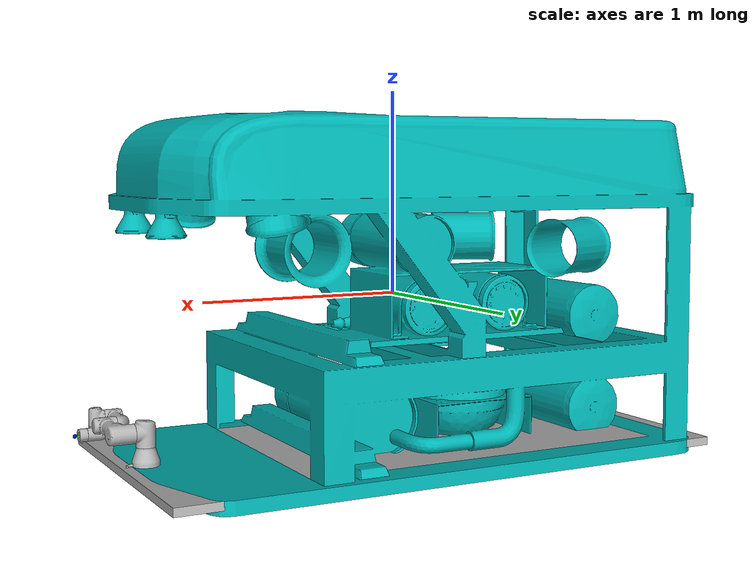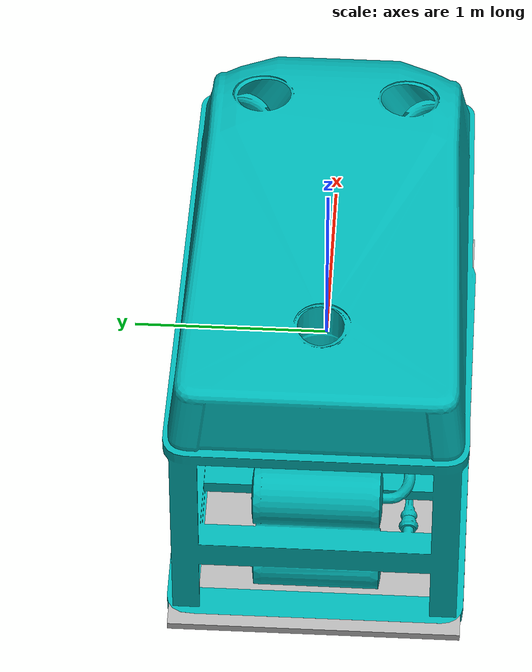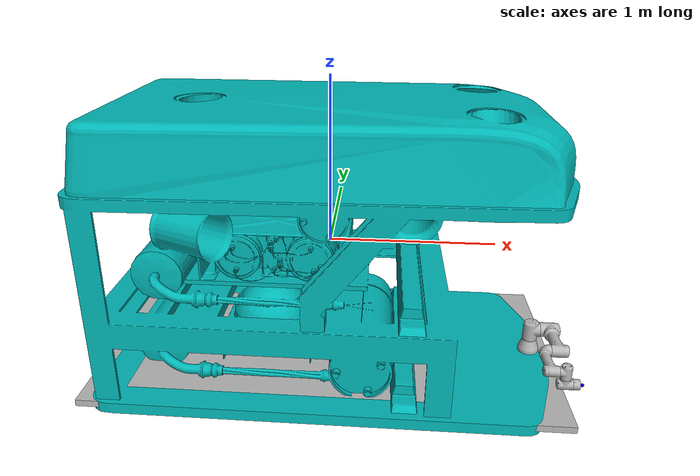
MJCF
<mujoco model="rexrov2_ur3">
    <compiler angle="radian" coordinate="local" />

    <actuator>
        <!-- UR3 controller -->
        <!-- Physical limits of the actuator. -->
        <!-- Values taken from https://www.universal-robots.com/articles/ur-articles/max-joint-torques/ -->
        <motor ctrllimited="true" ctrlrange="-56.0 56.0" joint="shoulder_pan_joint" name="torq_j1"/>
        <motor ctrllimited="true" ctrlrange="-56.0 56.0" joint="shoulder_lift_joint" name="torq_j2"/>
        <motor ctrllimited="true" ctrlrange="-28.0 28.0" joint="elbow_joint" name="torq_j3"/>
        <motor ctrllimited="true" ctrlrange="-12.0 12.0" joint="wrist_1_joint" name="torq_j4"/>
        <motor ctrllimited="true" ctrlrange="-12.0 12.0" joint="wrist_2_joint" name="torq_j5"/>
        <motor ctrllimited="true" ctrlrange="-12.0 12.0" joint="wrist_3_joint" name="torq_j6"/>

        <!-- rov base controller -->
		<motor ctrllimited="true" ctrlrange="-1.0 1.0" gear="300.0" joint="wrist_x_slide_joint" name="torq_j7"/>
		<motor ctrllimited="true" ctrlrange="-1.0 1.0" gear="300.0" joint="wrist_y_slide_joint" name="torq_j8"/>
		<motor ctrllimited="true" ctrlrange="-1.0 1.0" gear="300.0" joint="wrist_z_slide_joint" name="torq_j9"/>
		<motor ctrllimited="true" ctrlrange="-1.0 1.0" gear="200.0" joint="wrist_z_hinge_joint" name="torq_j10"/>
		<motor ctrllimited="true" ctrlrange="-1.0 1.0" gear="200.0" joint="wrist_y_hinge_joint" name="torq_j11"/>
		<motor ctrllimited="true" ctrlrange="-1.0 1.0" gear="200.0" joint="wrist_x_hinge_joint" name="torq_j12"/>
    </actuator>

    <asset>
        <!-- ROV and the accessories -->
        <mesh name="RexROV2_no_props" file="meshes/RexROV2_no_props.stl" />
        <mesh name="dvl" file="meshes/dvl.stl" />
        <mesh name="rpt" file="meshes/rpt.stl" />
        <mesh name="pressure" file="meshes/pressure.stl" />
        <mesh name="oe14-372" file="meshes/oe14-372.stl" />
        <mesh name="Propeller" file="meshes/Propeller.stl" />
        <!-- UR3 arm -->
        <mesh name="base" file="meshes/base.stl" />
        <mesh name="shoulder" file="meshes/shoulder.stl" />
        <mesh name="upperarm" file="meshes/upperarm.stl" />
        <mesh name="forearm" file="meshes/forearm.stl" />
        <mesh name="wrist1" file="meshes/wrist1.stl" />
        <mesh name="wrist2" file="meshes/wrist2.stl" />
        <mesh name="wrist3" file="meshes/wrist3.stl" />
    </asset>

    <default>
      <geom contype='1' conaffinity='1' margin="0.001" solimp="0.99 0.99 0.01" solref="0.01 1" condim="4" rgba="0. 0.7 0.7 1"/>
      <default class="viz">
        <geom contype="0" conaffinity="0" group="1" />
      </default>
      <default class="coll">
        <geom contype="1" conaffinity="1" margin='0.001' solimp='0.99 0.99 0.01' solref='0.01 1' condim="4" friction="1 .001 .001" type="mesh"/>
      </default>
      <default class="site">
        <geom group="2"/>
      </default>

    </default>

    <worldbody>
        <!-- add robot here -->
        <body name="base" pos=".0 0 0">
            <!-- rov front view -->
            <camera mode="fixed" name="rov_frontview" pos="1.0445136748848494 0. 0.330466935915392" quat="0.6894423676036768 0.22259422772341225 -0.13908966665891376 -0.6751111731899915" />

            <!-- rov 6 dof joint -->
            <joint name="wrist_x_slide_joint" damping="2000" type="slide" pos="0 0 0" axis="1 0 0" limited="true" range="-0.2 0.2" />
            <joint name="wrist_y_slide_joint" damping="2000" type="slide" pos="0 0 0" axis="0 1 0" limited="true" range="-0.2 0.2" />
            <joint name="wrist_z_slide_joint" damping="5000" type="slide" pos="0 0 0" axis="0 0 1" limited="true" range="-0.2 0.2" />
            <joint name="wrist_z_hinge_joint" damping="5000" type="hinge" pos="0 0 0" axis="0 0 1" limited="true" range="-0.2 0.2" />
            <joint name="wrist_y_hinge_joint" damping="5000" type="hinge" pos="0 0 0" axis="0 1 0" limited="true" range="-0.2 0.2" />
            <joint name="wrist_x_hinge_joint" damping="5000" type="hinge" pos="0 0 0" axis="1 0 0" limited="true" range="-0.2 0.2" />
            <!-- sensor site -->
            <site name="torso" size=".01" rgba="0 0 0 0" class="site"/>
            <body name="rov_body">
                <geom type="mesh" class="viz" mesh="RexROV2_no_props" name="rov_body"/>
                <geom size="1.4 0.75 0.02" pos="0 0 -0.75" rgba="0.7 0.7 0.7 1" type="box" />

                <!-- ur3 base -->
                <geom pos="1.28 0 -0.73" quat="0.707107 0 0 0.707107" type="mesh" class="viz" rgba="0.7 0.7 0.7 1" mesh="base" />
            </body>

            <!-- add arm here -->
            <body name="shoulder_link" pos="1.28 0 -0.5781" quat="0.707107 0 0 -0.707107">
                <inertial pos="0 0 0" mass="2" diaginertia="0.00809316 0.00809316 0.005625" />
                <joint name="shoulder_pan_joint" pos="0 0 0" axis="0 0 1" limited="true" range="-6.28319 6.28319" damping="10" frictionloss="0.01" />
                <geom type="mesh" class="viz" rgba="0.7 0.7 0.7 1" mesh="shoulder" />
                <geom type="mesh" class="coll" rgba="0.7 0.7 0.7 1" mesh="shoulder" name="shoulder"/>
                <body name="upper_arm_link" pos="0 0.1198 0" quat="0.707107 0 0.707107 0">
                    <inertial pos="0 0 0.121825" mass="3.42" diaginertia="0.0217285 0.0217285 0.00961875" />
                    <joint name="shoulder_lift_joint" pos="0 0 0" axis="0 1 0" limited="true" range="-6.28319 6.28319" damping="10" frictionloss="0.01" />
                    <geom type="mesh" class="viz" rgba="0.7 0.7 0.7 1" mesh="upperarm" />
                    <geom type="mesh" class="coll" rgba="0.7 0.7 0.7 1" mesh="upperarm" name="upperarm"/>
                    <body name="forearm_link" pos="0 -0.0925 0.24365">
                        <inertial pos="0 0 0.106625" mass="1.26" diaginertia="0.00654681 0.00654681 0.00354375" />
                        <joint name="elbow_joint" pos="0 0 0" axis="0 1 0" limited="true" range="-3.14159 3.14159" damping="10" frictionloss="0.01"/>
                        <geom type="mesh" class="viz" rgba="0.7 0.7 0.7 1" mesh="forearm" />
                        <geom type="mesh" class="coll" rgba="0.7 0.7 0.7 1" mesh="forearm" />
                        <body name="wrist_1_link" pos="0 0 0.21325" quat="0.707107 0 0.707107 0">
                            <inertial pos="0 0 0" quat="0.5 0.5 -0.5 0.5" mass="0.8" diaginertia="0.00225 0.002085 0.002085" />
                            <joint name="wrist_1_joint" pos="0 0 0" axis="0 1 0" limited="true" range="-6.28319 6.28319" damping="10" frictionloss="0.01"/>
                            <geom type="mesh" class="viz" rgba="0.7 0.7 0.7 1" mesh="wrist1" />
                            <geom type="mesh" class="coll" rgba="0.7 0.7 0.7 1" mesh="wrist1" name="wrist1"/>
                            <body name="wrist_2_link" pos="0 0.08505 0">
                                <inertial pos="0 0 0" quat="0.5 0.5 -0.5 0.5" mass="0.8" diaginertia="0.00225 0.002085 0.002085" />
                                <joint name="wrist_2_joint" pos="0 0 0" axis="0 0 1" limited="true" range="-6.28319 6.28319" damping="10" frictionloss="0.01"/>
                                <geom type="mesh" class="viz" rgba="0.7 0.7 0.7 1" mesh="wrist2" />
                                <geom type="mesh" class="coll" rgba="0.7 0.7 0.7 1" mesh="wrist2" name="wrist2"/>
                                <body name="wrist_3_link" pos="0 0 0.08535">
                                    <inertial pos="0 0.000233333 0" quat="0.5 0.5 -0.5 0.5" mass="0.351" diaginertia="1.00099 1.00092 1.00091" />
                                    <joint name="wrist_3_joint" pos="0 0 0" axis="0 1 0" limited="true" range="-6.28319 6.28319" damping="10" frictionloss="0.01"/>
                                    <geom type="mesh" class="viz" rgba="0.7 0.7 0.7 1" mesh="wrist3" />
                                    <geom type="mesh" class="coll" rgba="0.7 0.7 0.7 1" mesh="wrist3" name="wrist3"/>
                                    <geom size="0.005 0.005 0.005" pos="0 0.0819 0" quat="0.707107 -0.707107 0 0" type="box" class="viz" rgba="0. 1. 0. 1"/>
                                    <geom size="0.005 0.005 0.005" pos="0 0.0819 0" quat="0.707107 -0.707107 0 0" type="box" class="coll" rgba="0. 1. 0. 1" />

                                    <body name="right_hand" pos="0 0.098 0" quat="0.707 -0.707 0 0" >
                                        <!-- This sites were added for visualization. They are all standardized between models-->
                                        <!-- Position mimics the gripper attachment point (right_hand) -->
                                        <!--  Y-axis should be perpendicular to grasping motion, and Z-axis should point out of the robot eef -->
                                        <site name="ee" pos="0 0 0" size="0.01 0.01 0.01" rgba="0 0 1 1" type="sphere" group="1"/>
                                        <site name="ee_x" pos="0 0 0" size="0.005 .1"  quat="0.707105 0.707108 0 0 " rgba="1 0 0 0" type="cylinder" group="1"/>
                                        <site name="ee_z" pos="0 0 0" size="0.005 .1" quat="0.707105 0 0 0.707108" rgba="0 0 1 0" type="cylinder" group="1"/>
                                        <site name="ee_y" pos="0 0 0" size="0.005 .1" quat="0.707105 0 0.707108 0 " rgba="0 1 0 0" type="cylinder" group="1"/>
                                        <!-- This camera points out from the eef. -->
                                        <camera mode="fixed" name="eye_in_hand" pos="0.05 0 0" quat="0 0.707108 0.707108 0" fovy="75"/>
                                        <!-- To add gripper -->

                                    </body>
                                </body>
                            </body>
                        </body>
                    </body>
                </body>
            </body>
        </body>
    </worldbody>

  <contact>
    <exclude body1="rov_body" body2="shoulder_link" />
    <exclude body1="shoulder_link" body2="upper_arm_link" />
    <exclude body1="upper_arm_link" body2="forearm_link" />
    <exclude body1="forearm_link" body2="wrist_1_link" />
    <exclude body1="wrist_1_link" body2="wrist_2_link" />
    <exclude body1="wrist_2_link" body2="wrist_3_link" />
    <exclude body1="wrist_3_link" body2="right_hand" />
  </contact>

    <sensor>
        <!-- IMU -->
        <velocimeter name="velocimeter" site="torso"/>
        <accelerometer name="accelerometer" site="torso"/>
        <gyro name="gyro" site="torso"/>
    </sensor>

</mujoco>
